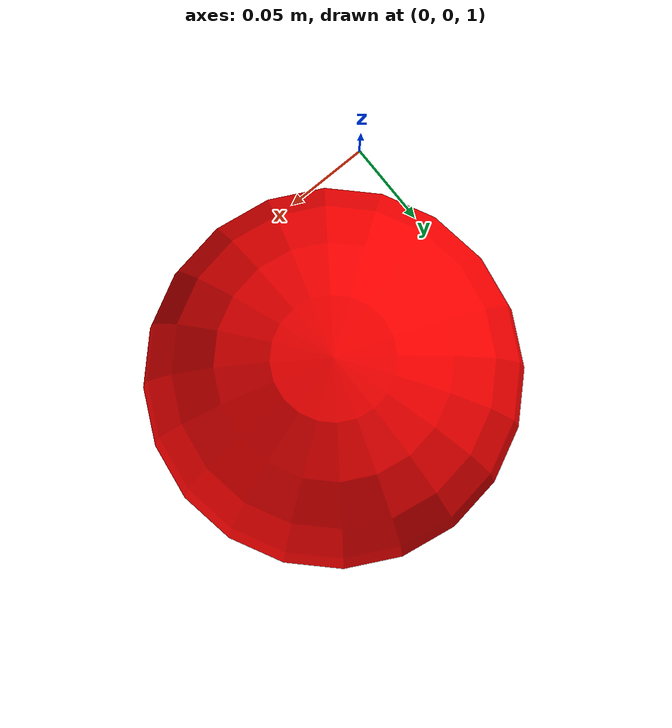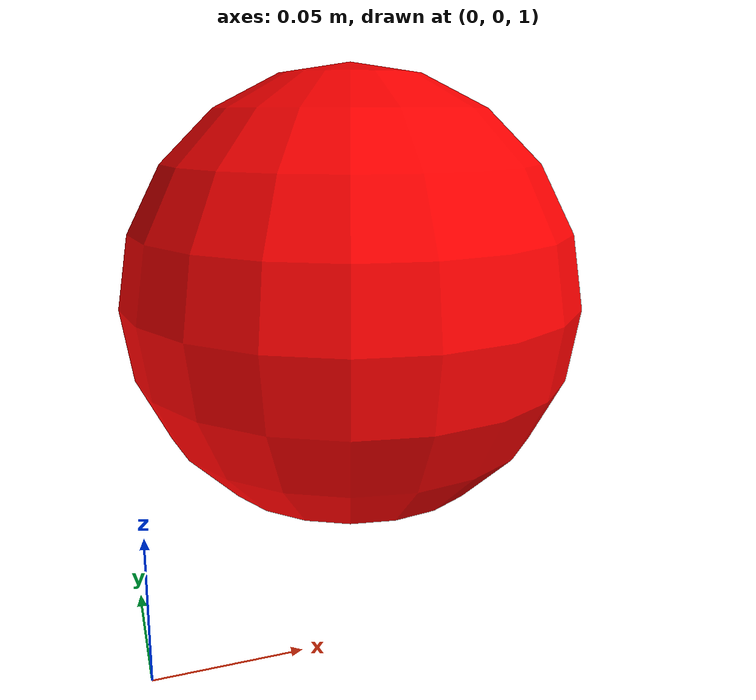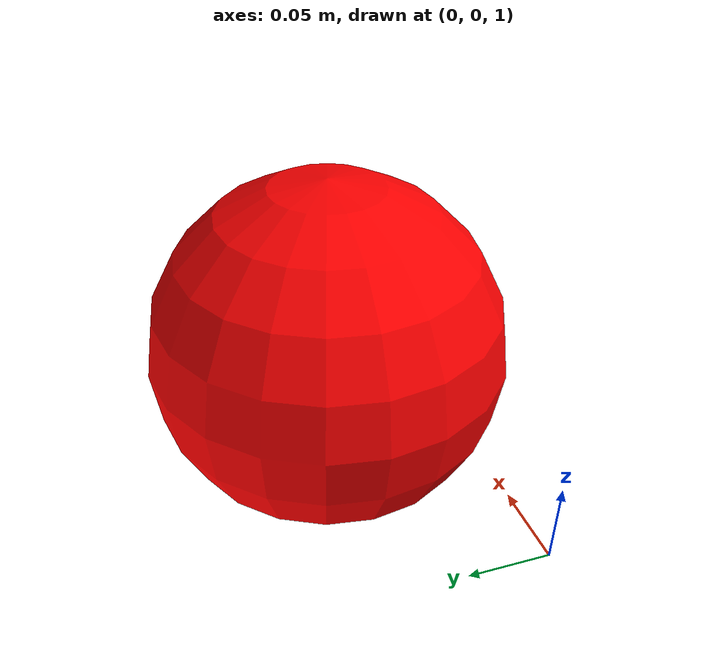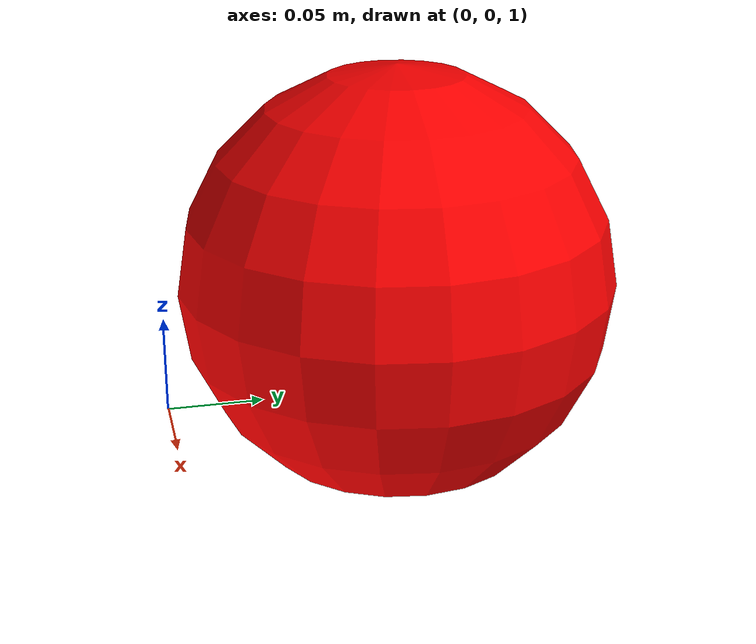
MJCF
<mujoco>
    <worldbody>
        <geom name='floor' pos='0 0 -0.1' size='5 5 .125' type='plane' condim='3'/>
        <body name='ball' pos='0 0 1'>
            <joint type='free'/>
            <geom name='ball' pos='0.1 0.1 0.1' size='.1' mass ='0.5' type='sphere' rgba='1 0 0 1'/>
        </body>
    </worldbody>
</mujoco>
